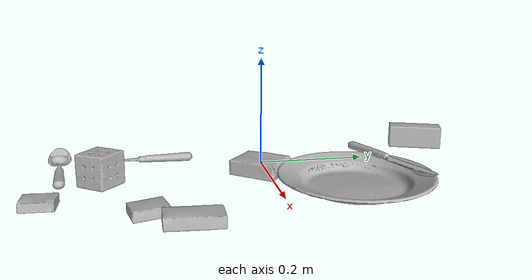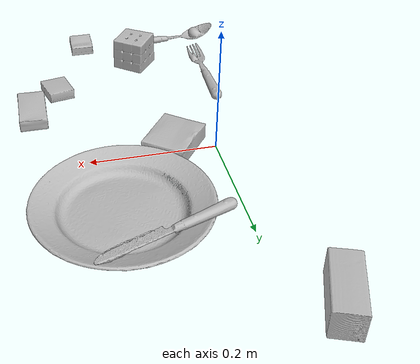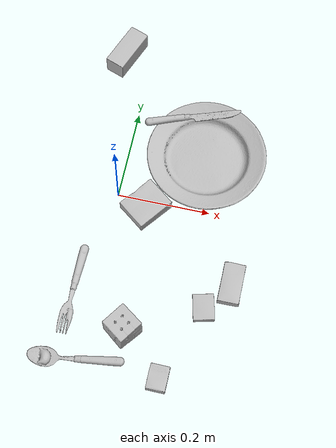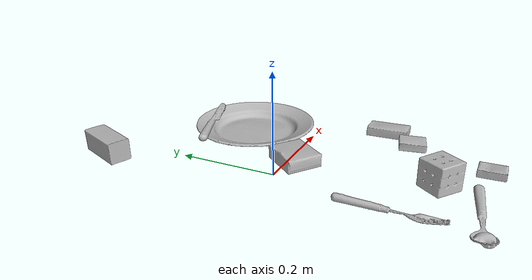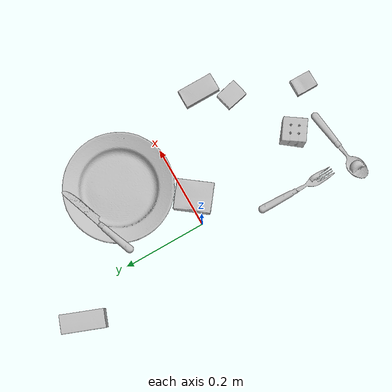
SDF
<sdf version="1.4">
  <world name="default">
    <light name="light1" type="point">
      <pose>0 0 1 0 0 0</pose>
      <diffuse>3 3 3 1</diffuse>
      <specular>3 3 3 1</specular>
    </light>
    <light name="light2" type="point">
      <pose>0 0.5 2 0 0 0</pose>
      <diffuse>1 1 1 1</diffuse>
      <specular>1 1 1 1</specular>
    </light>
    <light name="light3" type="point">
      <pose>0 0.5 2 0 0 0</pose>
      <diffuse>3 3 3 1</diffuse>
      <specular>3 3 3 1</specular>
    </light>
    <scene>
      <ambient>0.7 0.7 0.7</ambient>
    </scene>
    <model name="box11">
      <link name="link_box11">
        <collision name="default">
          <geometry>
            <mesh>
              <uri>model://gelatin_box/collision_meshes/collision.obj</uri>
              <scale>1.0 1.0 1.0</scale>
            </mesh>
          </geometry>
          <surface>
            <friction>
              <ode>
                <mu>0.5</mu>
                <mu2>0.5</mu2>
              </ode>
            </friction>
          <contact>
        <ode>
            <max_vel>0</max_vel>
            <min_depth>0.0001</min_depth>
            <kp>1e8</kp>
        </ode>
    </contact></surface>
        </collision>
        <visual name="default">
          <geometry>
            <mesh>
              <uri>model://gelatin_box/visual_meshes/visual.dae</uri>
              <scale>1.0 1.0 1.0</scale>
            </mesh>
          </geometry>
        </visual>
        <inertial>
          <mass>0.25029057264328003</mass>
          <pose>0.0004319618456065655 0.00011156871914863586 -0.0003640321083366871 -0.0010503719874808634 -0.004755820553863559 0.01644055760983946</pose>
          <inertia>
            <ixx>0.00017668474</ixx>
            <iyy>0.000126205</iyy>
            <izz>0.00026895347</izz>
            <ixy>0</ixy>
            <ixz>0</ixz>
            <iyz>0</iyz>
          </inertia>
        </inertial>
      </link>
      <pose>0.06496958434581757 -0.014459945261478424 0.015211180783808231 0.0020633132614742535 -0.0026997899750837973 2.481642567091209</pose>
    </model>
    <model name="box12">
      <link name="link_box12">
        <collision name="default">
          <geometry>
            <mesh>
              <uri>model://rubiks_cube/collision_meshes/collision.obj</uri>
              <scale>1.0 1.0 1.0</scale>
            </mesh>
          </geometry>
          <surface>
            <friction>
              <ode>
                <mu>0.5</mu>
                <mu2>0.5</mu2>
              </ode>
            </friction>
          <contact>
        <ode>
            <max_vel>0</max_vel>
            <min_depth>0.0001</min_depth>
            <kp>1e8</kp>
        </ode>
    </contact></surface>
        </collision>
        <visual name="default">
          <geometry>
            <mesh>
              <uri>model://rubiks_cube/visual_meshes/visual.dae</uri>
              <scale>1.0 1.0 1.0</scale>
            </mesh>
          </geometry>
        </visual>
        <inertial>
          <mass>0.21638615429401398</mass>
          <pose>2.6721043468569405e-05 5.2569666877388954e-05 -7.264316536748083e-06 -0.054671974778446215 -0.0981397652693683 -0.03445575269454635</pose>
          <inertia>
            <ixx>0.00011956789</ixx>
            <iyy>0.00011901029</iyy>
            <izz>0.00012055871</izz>
            <ixy>0</ixy>
            <ixz>0</ixz>
            <iyz>0</iyz>
          </inertia>
        </inertial>
      </link>
      <pose>0.07892951369285583 -0.2902553379535675 0.028678985312581062 -3.4461997572381306e-06 -7.562325884769588e-07 -2.190501388335292</pose>
    </model>
    <model name="box13">
      <link name="link_box13">
        <collision name="default">
          <geometry>
            <mesh>
              <uri>model://pudding_box/collision_meshes/collision.obj</uri>
              <scale>0.5 0.5 0.5</scale>
            </mesh>
          </geometry>
          <surface>
            <friction>
              <ode>
                <mu>0.5</mu>
                <mu2>0.5</mu2>
              </ode>
            </friction>
          <contact>
        <ode>
            <max_vel>0</max_vel>
            <min_depth>0.0001</min_depth>
            <kp>1e8</kp>
        </ode>
    </contact></surface>
        </collision>
        <visual name="default">
          <geometry>
            <mesh>
              <uri>model://pudding_box/visual_meshes/visual.dae</uri>
              <scale>0.5 0.5 0.5</scale>
            </mesh>
          </geometry>
        </visual>
        <inertial>
          <mass>0.024692855775356293</mass>
          <pose>0.00024474109522998333 0.00040339428232982755 -0.0002594413817860186 0.005213102294063647 -0.006603794537377036 0.020079827031592012</pose>
          <inertia>
            <ixx>6.9785e-06</ixx>
            <iyy>4.695185e-06</iyy>
            <izz>1.030558e-05</izz>
            <ixy>0</ixy>
            <ixz>0</ixz>
            <iyz>0</iyz>
          </inertia>
        </inertial>
      </link>
      <pose>0.2299824357032776 -0.2113206684589386 0.009862901642918587 0.022348532752608372 -0.011391737205526657 0.23297344016501625</pose>
    </model>
    <model name="box21">
      <link name="link_box21">
        <collision name="default">
          <geometry>
            <mesh>
              <uri>model://wood_block/collision_meshes/collision.obj</uri>
              <scale>0.5 0.5 0.5</scale>
            </mesh>
          </geometry>
          <surface>
            <friction>
              <ode>
                <mu>0.5</mu>
                <mu2>0.5</mu2>
              </ode>
            </friction>
          <contact>
        <ode>
            <max_vel>0</max_vel>
            <min_depth>0.0001</min_depth>
            <kp>1e8</kp>
        </ode>
    </contact></surface>
        </collision>
        <visual name="default">
          <geometry>
            <mesh>
              <uri>model://wood_block/visual_meshes/visual.dae</uri>
              <scale>0.5 0.5 0.5</scale>
            </mesh>
          </geometry>
        </visual>
        <inertial>
          <mass>0.2621258497238159</mass>
          <pose>-2.9066577553749084e-06 -0.000285404734313488 0.00013204291462898254 -0.05220799390803197 -0.005192696360797016 -0.006861376940793837</pose>
          <inertia>
            <ixx>8.7691005e-05</ixx>
            <iyy>0.00027701593</iyy>
            <izz>0.00027597975</izz>
            <ixy>0</ixy>
            <ixz>0</ixz>
            <iyz>0</iyz>
          </inertia>
        </inertial>
      </link>
      <pose>-0.060790471732616425 0.34431546926498413 0.02262924611568451 -0.0052085891232280706 0.00571874459560923 1.2069947625930084</pose>
    </model>
    <model name="box22">
      <link name="link_box22">
        <collision name="default">
          <geometry>
            <mesh>
              <uri>model://cracker_box/collision_meshes/collision.obj</uri>
              <scale>0.25 0.25 0.25</scale>
            </mesh>
          </geometry>
          <surface>
            <friction>
              <ode>
                <mu>0.5</mu>
                <mu2>0.5</mu2>
              </ode>
            </friction>
          <contact>
        <ode>
            <max_vel>0</max_vel>
            <min_depth>0.0001</min_depth>
            <kp>1e8</kp>
        </ode>
    </contact></surface>
        </collision>
        <visual name="default">
          <geometry>
            <mesh>
              <uri>model://cracker_box/visual_meshes/visual.dae</uri>
              <scale>0.25 0.25 0.25</scale>
            </mesh>
          </geometry>
        </visual>
        <inertial>
          <mass>0.04544714838266373</mass>
          <pose>0.0002366049593547359 6.358561950037256e-05 -0.0004257383698131889 -0.0003162075981767565 -0.011106493326025165 0.0025467940711340945</pose>
          <inertia>
            <ixx>7.224829e-06</ixx>
            <iyy>1.1929612e-05</iyy>
            <izz>1.702465e-05</izz>
            <ixy>0</ixy>
            <ixz>0</ixz>
            <iyz>0</iyz>
          </inertia>
        </inertial>
      </link>
      <pose>0.17026010155677795 -0.3729404807090759 0.009096026420593262 -0.014050424420759357 -0.005016625337611914 -1.5793611799380631</pose>
    </model>
    <model name="box23">
      <link name="link_box23">
        <collision name="default">
          <geometry>
            <mesh>
              <uri>model://sugar_box/collision_meshes/collision.obj</uri>
              <scale>0.5 0.5 0.5</scale>
            </mesh>
          </geometry>
          <surface>
            <friction>
              <ode>
                <mu>0.5</mu>
                <mu2>0.5</mu2>
              </ode>
            </friction>
          <contact>
        <ode>
            <max_vel>0</max_vel>
            <min_depth>0.0001</min_depth>
            <kp>1e8</kp>
        </ode>
    </contact></surface>
        </collision>
        <visual name="default">
          <geometry>
            <mesh>
              <uri>model://sugar_box/visual_meshes/visual.dae</uri>
              <scale>0.5 0.5 0.5</scale>
            </mesh>
          </geometry>
        </visual>
        <inertial>
          <mass>0.08974423259496689</mass>
          <pose>0.0005171863595023751 1.924554817378521e-05 -0.00018182402709499002 -0.00040462647498757867 0.0010506636387592515 0.0026153785559760484</pose>
          <inertia>
            <ixx>1.869366e-05</ixx>
            <iyy>6.0421757e-05</iyy>
            <izz>7.233205e-05</izz>
            <ixy>0</ixy>
            <ixz>0</ixz>
            <iyz>0</iyz>
          </inertia>
        </inertial>
      </link>
      <pose>0.27681300044059753 -0.14872106909751892 0.011399311013519764 0.0007749465631725555 -0.023432578217999232 -1.5767062341338853</pose>
    </model>
    <model name="plate1">
      <link name="link_plate1">
        <collision name="default">
          <geometry>
            <mesh>
              <uri>model://plate/collision_meshes/collision.obj</uri>
              <scale>1.0 1.0 1.0</scale>
            </mesh>
          </geometry>
          <surface>
            <friction>
              <ode>
                <mu>0.5</mu>
                <mu2>0.5</mu2>
              </ode>
            </friction>
          <contact>
        <ode>
            <max_vel>0</max_vel>
            <min_depth>0.0001</min_depth>
            <kp>1e8</kp>
        </ode>
    </contact></surface>
        </collision>
        <visual name="default">
          <geometry>
            <mesh>
              <uri>model://plate/visual_meshes/visual.dae</uri>
              <scale>1.0 1.0 1.0</scale>
            </mesh>
          </geometry>
        </visual>
        <inertial>
          <mass>0.25075921416282654</mass>
          <pose>-0.0006044597248546779 0.00027825814322568476 -0.0010562010575085878 0.0022187872861569474 -0.003225478732834207 0.4526086398584511</pose>
          <inertia>
            <ixx>0.0011730565</ixx>
            <iyy>0.0011618367</iyy>
            <izz>0.0022943232</izz>
            <ixy>0</ixy>
            <ixz>0</ixz>
            <iyz>0</iyz>
          </inertia>
        </inertial>
      </link>
      <pose>0.16841422021389008 0.12632383406162262 0.013733015395700932 5.2668924826713966e-08 2.483109636673203e-07 1.542123888505849</pose>
    </model>
    <model name="silverware1">
      <link name="link_silverware1">
        <collision name="default">
          <geometry>
            <mesh>
              <uri>model://spoon/collision_meshes/collision.obj</uri>
              <scale>1.0 1.0 1.0</scale>
            </mesh>
          </geometry>
          <surface>
            <friction>
              <ode>
                <mu>0.5</mu>
                <mu2>0.5</mu2>
              </ode>
            </friction>
          <contact>
        <ode>
            <max_vel>0</max_vel>
            <min_depth>0.0001</min_depth>
            <kp>1e8</kp>
        </ode>
    </contact></surface>
        </collision>
        <visual name="default">
          <geometry>
            <mesh>
              <uri>model://spoon/visual_meshes/visual.dae</uri>
              <scale>1.0 1.0 1.0</scale>
            </mesh>
          </geometry>
        </visual>
        <inertial>
          <mass>0.036317918449640274</mass>
          <pose>-0.005526306107640266 -0.0016034167492762208 -0.0007271648501046002 0.03521625205726148 -0.039065835985121374 0.0061506181118877856</pose>
          <inertia>
            <ixx>2.0200612e-06</ixx>
            <iyy>0.00013818844</iyy>
            <izz>0.00013918467</izz>
            <ixy>0</ixy>
            <ixz>0</ixz>
            <iyz>0</iyz>
          </inertia>
        </inertial>
      </link>
      <pose>0.0004257173277437687 -0.3715377449989319 0.00838526152074337 0.006731791138318873 0.02689299819838683 -2.9982923750767743</pose>
    </model>
    <model name="silverware2">
      <link name="link_silverware2">
        <collision name="default">
          <geometry>
            <mesh>
              <uri>model://knife/collision_meshes/collision.obj</uri>
              <scale>1.0 1.0 1.0</scale>
            </mesh>
          </geometry>
          <surface>
            <friction>
              <ode>
                <mu>0.5</mu>
                <mu2>0.5</mu2>
              </ode>
            </friction>
          <contact>
        <ode>
            <max_vel>0</max_vel>
            <min_depth>0.0001</min_depth>
            <kp>1e8</kp>
        </ode>
    </contact></surface>
        </collision>
        <visual name="default">
          <geometry>
            <mesh>
              <uri>model://knife/visual_meshes/visual.dae</uri>
              <scale>1.0 1.0 1.0</scale>
            </mesh>
          </geometry>
        </visual>
        <inertial>
          <mass>0.03166225552558899</mass>
          <pose>-0.02378525584936142 0.0015275123296305537 5.0620161346159875e-05 0.07305183970819301 0.01724842094470774 -0.007409827313526415</pose>
          <inertia>
            <ixx>8.9870355e-07</ixx>
            <iyy>0.00012164128</iyy>
            <izz>0.00012193073</izz>
            <ixy>0</ixy>
            <ixz>0</ixz>
            <iyz>0</iyz>
          </inertia>
        </inertial>
      </link>
      <pose>0.12229117751121521 0.2047065794467926 0.03225606307387352 -0.0009823268922210752 0.0024233026253804328 0.33816675128409457</pose>
    </model>
    <model name="silverware3">
      <link name="link_silverware3">
        <collision name="default">
          <geometry>
            <mesh>
              <uri>model://fork/collision_meshes/collision.obj</uri>
              <scale>1.0 1.0 1.0</scale>
            </mesh>
          </geometry>
          <surface>
            <friction>
              <ode>
                <mu>0.5</mu>
                <mu2>0.5</mu2>
              </ode>
            </friction>
          <contact>
        <ode>
            <max_vel>0</max_vel>
            <min_depth>0.0001</min_depth>
            <kp>1e8</kp>
        </ode>
    </contact></surface>
        </collision>
        <visual name="default">
          <geometry>
            <mesh>
              <uri>model://fork/visual_meshes/visual.dae</uri>
              <scale>1.0 1.0 1.0</scale>
            </mesh>
          </geometry>
        </visual>
        <inertial>
          <mass>0.03018845245242119</mass>
          <pose>-0.029570050537586212 0.00046588227269239724 0.00032188609475269914 -0.013551782414775644 -0.010977841906558662 0.014453907874592884</pose>
          <inertia>
            <ixx>1.0582761e-06</ixx>
            <iyy>7.881335e-05</iyy>
            <izz>7.928668e-05</izz>
            <ixy>0</ixy>
            <ixz>0</ixz>
            <iyz>0</iyz>
          </inertia>
        </inertial>
      </link>
      <pose>-0.04149211570620537 -0.2279939502477646 0.005707236006855965 -0.18174196783030272 0.02476308168377398 -1.5886823648297677</pose>
    </model>
  <physics type="ode">
      <max_contacts>50</max_contacts>
      <ode>
        <solver>
          <type>quick</type>
          <iters>75</iters>
        </solver>
        <constraints>
          <contact_max_correcting_vel>0</contact_max_correcting_vel>
          <contact_surface_layer>0</contact_surface_layer>
        </constraints>
      </ode>
    </physics></world>
</sdf>
